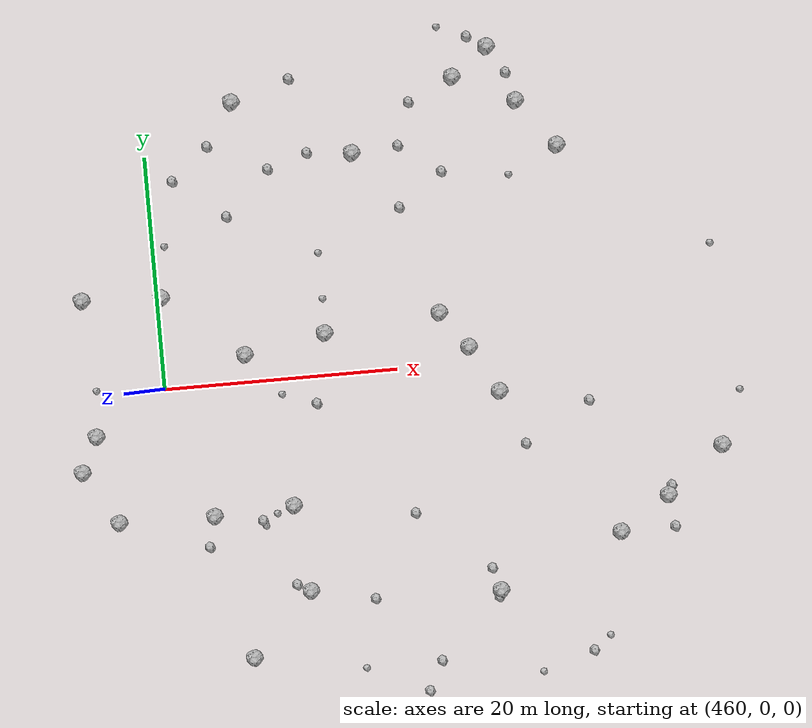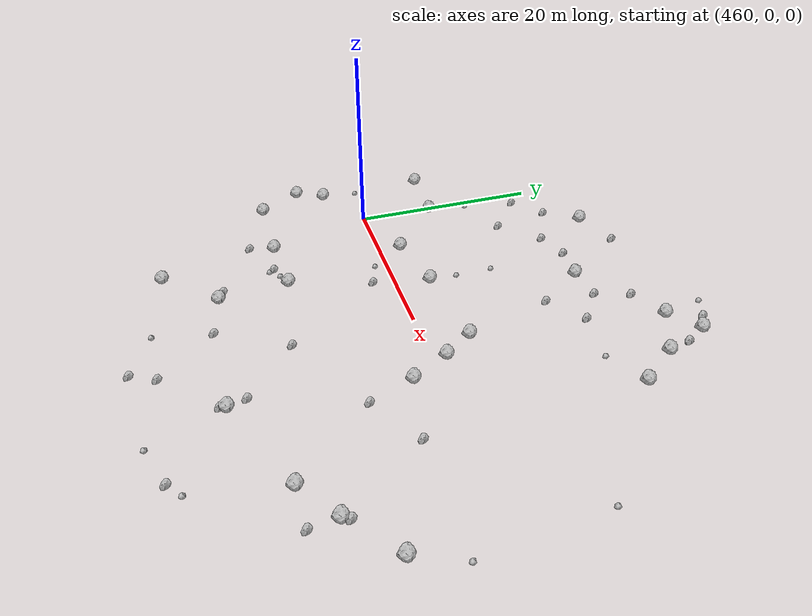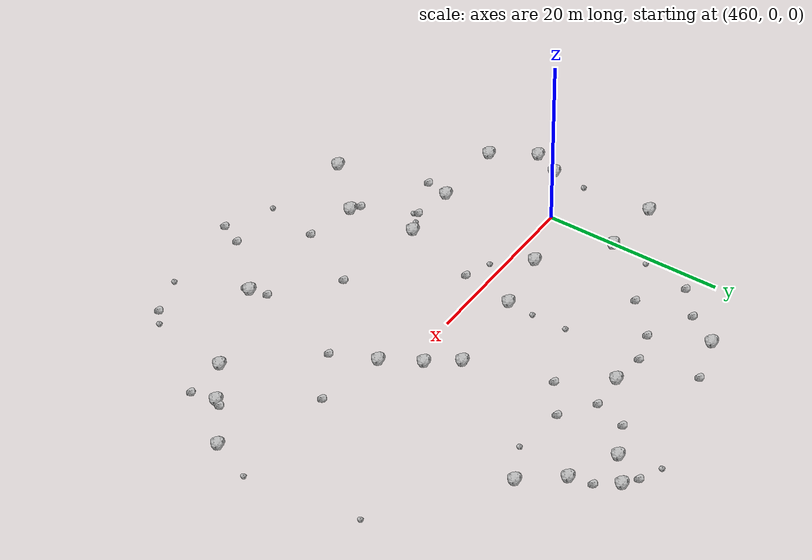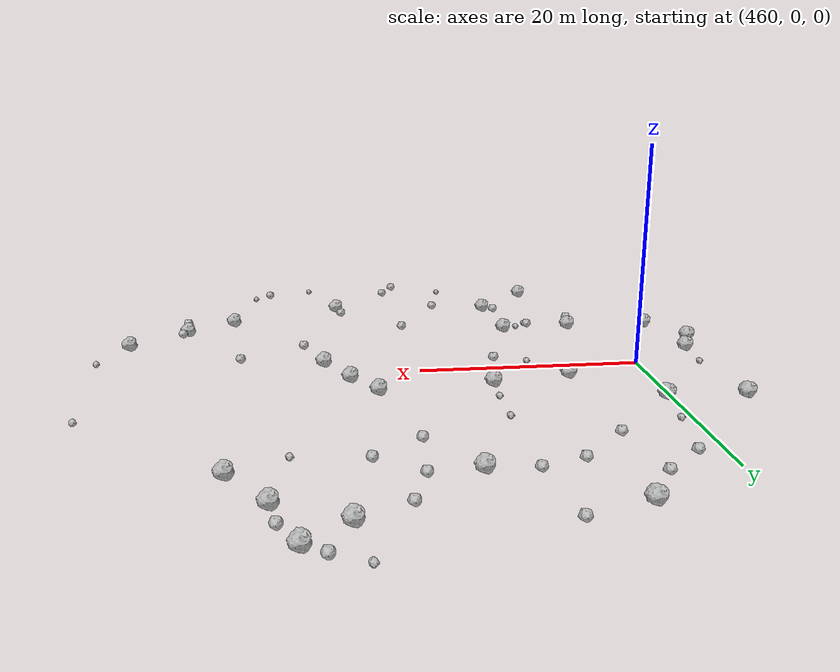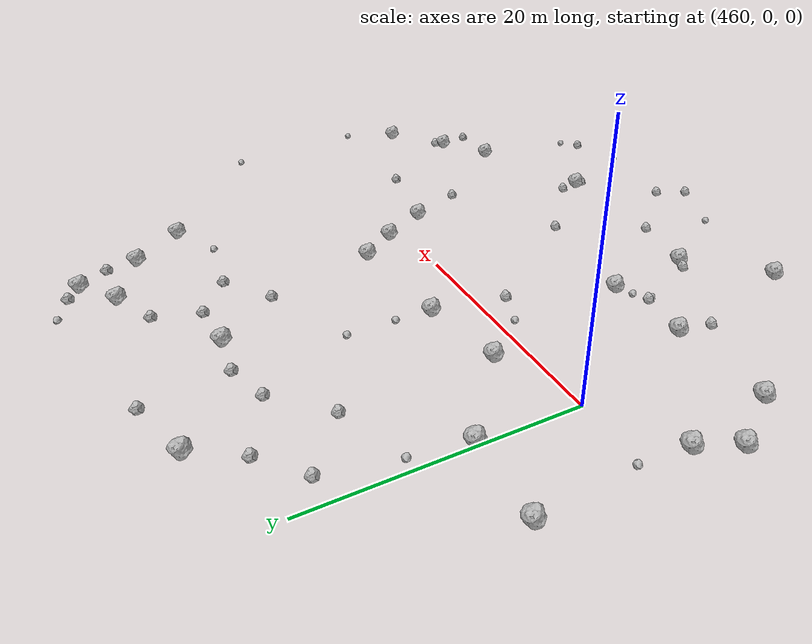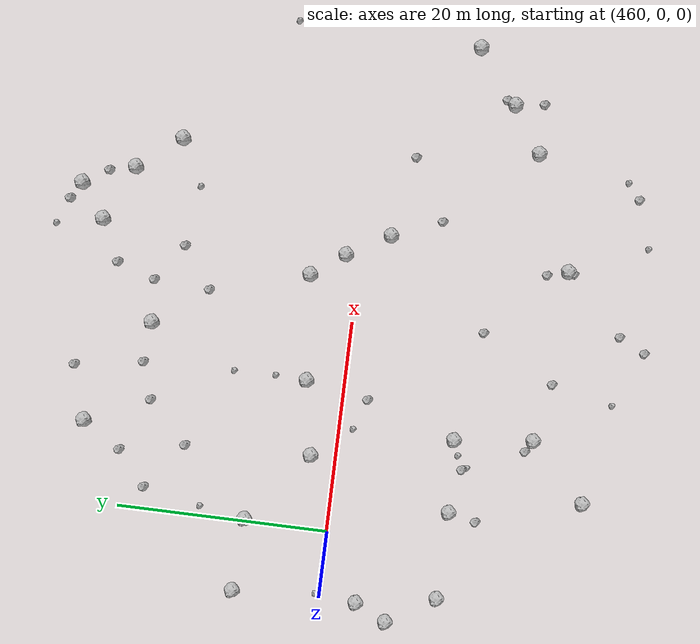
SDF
<sdf version="1.6">
 <world name="default">
  <include><uri>model://sun</uri></include>
  <model name="rock1_12_3">
   <include><uri>model://rock1</uri><pose>453.62732201834905 8.167402110558314 0.5 0 0 0</pose></include>
  </model>
  <model name="rock1_12_4">
   <include><uri>model://rock1</uri><pose>507.24907254676066 -8.830599379233679 0.5 0 0 0</pose></include>
  </model>
  <model name="rock1_12_5">
   <include><uri>model://rock1</uri><pose>492.12966080815687 22.099904223308847 0.5 0 0 0</pose></include>
  </model>
  <model name="rock1_12_6">
   <include><uri>model://rock1</uri><pose>484.0663799397314 4.5322346351543885 0.5 0 0 0</pose></include>
  </model>
  <model name="rock1_12_7">
   <include><uri>model://rock1</uri><pose>487.2791973322211 -19.603878825775517 0.5 0 0 0</pose></include>
  </model>
  <model name="rock1_12_8">
   <include><uri>model://rock1</uri><pose>497.9747750426092 -15.498870898004377 0.5 0 0 0</pose></include>
  </model>
  <model name="rock1_12_9">
   <include><uri>model://rock1</uri><pose>467.14372928853925 2.385903848620785 0.5 0 0 0</pose></include>
  </model>
  <model name="rock1_12_10">
   <include><uri>model://rock1</uri><pose>490.05262128190986 26.924990144526895 0.5 0 0 0</pose></include>
  </model>
  <model name="rock1_12_11">
   <include><uri>model://rock1</uri><pose>488.62266353699266 -2.5994267048281046 0.5 0 0 0</pose></include>
  </model>
  <model name="rock1_12_12">
   <include><uri>model://rock1</uri><pose>486.8956225140719 24.578485895903903 0.5 0 0 0</pose></include>
  </model>
  <model name="rock1_12_13">
   <include><uri>model://rock1</uri><pose>463.3751850631735 -11.19734767496924 0.5 0 0 0</pose></include>
  </model>
  <model name="rock1_12_14">
   <include><uri>model://rock1</uri><pose>471.04549694414 -18.272965321819612 0.5 0 0 0</pose></include>
  </model>
  <model name="rock1_12_15">
   <include><uri>model://rock1</uri><pose>474.12180526980904 3.6481664204965583 0.5 0 0 0</pose></include>
  </model>
  <model name="rock1_12_16">
   <include><uri>model://rock1</uri><pose>502.2804903462912 -12.710251829642203 0.5 0 0 0</pose></include>
  </model>
  <model name="rock1_12_17">
   <include><uri>model://rock1</uri><pose>470.2119668690598 -10.851663050075182 0.5 0 0 0</pose></include>
  </model>
  <model name="rock1_12_18">
   <include><uri>model://rock1</uri><pose>467.85178797973293 24.041752700831125 0.5 0 0 0</pose></include>
  </model>
  <model name="rock1_12_19">
   <include><uri>model://rock1</uri><pose>455.17734638729866 -11.065221097986054 0.5 0 0 0</pose></include>
  </model>
  <model name="rock1_12_20">
   <include><uri>model://rock1</uri><pose>452.4145389220948 -6.51747456691804 0.5 0 0 0</pose></include>
  </model>
  <model name="rock1_12_21">
   <include><uri>model://rock1</uri><pose>486.34296291768936 1.4040923113189798 0.5 0 0 0</pose></include>
  </model>
  <model name="rock1_12_22">
   <include><uri>model://rock1</uri><pose>453.87045404928256 -3.539146955578701 0.5 0 0 0</pose></include>
  </model>
  <model name="rock1_12_23">
   <include><uri>model://rock1</uri><pose>477.7828386774391 18.818610942256 0.5 0 0 0</pose></include>
  </model>
  <model name="rock1_12_24">
   <include><uri>model://rock1</uri><pose>465.7187233317288 -23.579146443825813 0.5 0 0 0</pose></include>
  </model>
  <model name="rock1_12_25">
   <include><uri>model://rock1</uri><pose>495.33123851544667 17.99990497761528 0.5 0 0 0</pose></include>
  </model>
  <model name="rock1_12_26">
   <include><uri>model://rock1</uri><pose>460.42710118767957 7.848742578199172 0.5 0 0 0</pose></include>
  </model>
  <model name="rock2_12_0">
   <include><uri>model://rock2</uri><pose>481.4297748897073 13.838919438216557 0.3 0 0 0</pose></include>
  </model>
  <model name="rock2_12_1">
   <include><uri>model://rock2</uri><pose>470.43888713118014 18.08000811933639 0.3 0 0 0</pose></include>
  </model>
  <model name="rock2_12_2">
   <include><uri>model://rock2</uri><pose>480.45695757437534 -27.73549226208444 0.3 0 0 0</pose></include>
  </model>
  <model name="rock2_12_3">
   <include><uri>model://rock2</uri><pose>480.55110258136887 -12.428497457613819 0.3 0 0 0</pose></include>
  </model>
  <model name="rock2_12_4">
   <include><uri>model://rock2</uri><pose>472.8936100086111 25.643149640173604 0.3 0 0 0</pose></include>
  </model>
  <model name="rock2_12_5">
   <include><uri>model://rock2</uri><pose>466.56852844879757 14.320272184825619 0.3 0 0 0</pose></include>
  </model>
  <model name="rock2_12_6">
   <include><uri>model://rock2</uri><pose>488.42354932648203 27.95921455098165 0.3 0 0 0</pose></include>
  </model>
  <model name="rock2_12_7">
   <include><uri>model://rock2</uri><pose>487.093691806094 -20.199110756721627 0.3 0 0 0</pose></include>
  </model>
  <model name="rock2_12_8">
   <include><uri>model://rock2</uri><pose>485.2897645250528 16.60575698029706 0.3 0 0 0</pose></include>
  </model>
  <model name="rock2_12_9">
   <include><uri>model://rock2</uri><pose>476.49697407690286 -19.445655188082938 0.3 0 0 0</pose></include>
  </model>
  <model name="rock2_12_10">
   <include><uri>model://rock2</uri><pose>494.8149103646492 -25.489064813633984 0.3 0 0 0</pose></include>
  </model>
  <model name="rock2_12_11">
   <include><uri>model://rock2</uri><pose>486.7031321696786 -17.694862825068775 0.3 0 0 0</pose></include>
  </model>
  <model name="rock2_12_12">
   <include><uri>model://rock2</uri><pose>462.1802400769648 17.739802033143768 0.3 0 0 0</pose></include>
  </model>
  <model name="rock2_12_13">
   <include><uri>model://rock2</uri><pose>465.4094213612899 20.464630154536977 0.3 0 0 0</pose></include>
  </model>
  <model name="rock2_12_14">
   <include><uri>model://rock2</uri><pose>467.4550392227716 -11.938732536052694 0.3 0 0 0</pose></include>
  </model>
  <model name="rock2_12_15">
   <include><uri>model://rock2</uri><pose>482.98592206612335 22.77162571307108 0.3 0 0 0</pose></include>
  </model>
  <model name="rock2_12_16">
   <include><uri>model://rock2</uri><pose>496.22951946469266 -4.05653015882103 0.3 0 0 0</pose></include>
  </model>
  <model name="rock2_12_17">
   <include><uri>model://rock2</uri><pose>469.88984693515044 -17.67371190047141 0.3 0 0 0</pose></include>
  </model>
  <model name="rock2_12_18">
   <include><uri>model://rock2</uri><pose>491.50034368474223 24.597034939279098 0.3 0 0 0</pose></include>
  </model>
  <model name="rock2_12_19">
   <include><uri>model://rock2</uri><pose>481.75541313447746 19.12966384494414 0.3 0 0 0</pose></include>
  </model>
  <model name="rock2_12_20">
   <include><uri>model://rock2</uri><pose>502.6608793106861 -11.948432660944675 0.3 0 0 0</pose></include>
  </model>
  <model name="rock2_12_21">
   <include><uri>model://rock2</uri><pose>472.91839515406406 -2.311659692969556 0.3 0 0 0</pose></include>
  </model>
  <model name="rock2_12_22">
   <include><uri>model://rock2</uri><pose>473.9082232592692 19.19000754161644 0.3 0 0 0</pose></include>
  </model>
  <model name="rock2_12_23">
   <include><uri>model://rock2</uri><pose>462.70286015670587 -13.821348686498165 0.3 0 0 0</pose></include>
  </model>
  <model name="rock2_12_24">
   <include><uri>model://rock2</uri><pose>490.50502207674054 -7.296854954707641 0.3 0 0 0</pose></include>
  </model>
  <model name="rock2_12_25">
   <include><uri>model://rock2</uri><pose>481.7252553676283 -25.237557886071478 0.3 0 0 0</pose></include>
  </model>
  <model name="rock2_12_26">
   <include><uri>model://rock2</uri><pose>502.6685477421886 -15.479717727288262 0.3 0 0 0</pose></include>
  </model>
  <model name="rock3_12_0">
   <include><uri>model://rock3</uri><pose>467.64004461569743 -12.446783452870228 0.2 0 0 0</pose></include>
  </model>
  <model name="rock3_12_1">
   <include><uri>model://rock3</uri><pose>475.17768659500706 -25.359890283131833 0.2 0 0 0</pose></include>
  </model>
  <model name="rock3_12_2">
   <include><uri>model://rock3</uri><pose>507.70176942009357 8.476664225933334 0.2 0 0 0</pose></include>
  </model>
  <model name="rock3_12_3">
   <include><uri>model://rock3</uri><pose>490.9964321266384 15.827493848799506 0.2 0 0 0</pose></include>
  </model>
  <model name="rock3_12_4">
   <include><uri>model://rock3</uri><pose>496.29509086244536 -24.34332873163172 0.2 0 0 0</pose></include>
  </model>
  <model name="rock3_12_5">
   <include><uri>model://rock3</uri><pose>474.1518360336742 6.583597390207437 0.2 0 0 0</pose></include>
  </model>
  <model name="rock3_12_6">
   <include><uri>model://rock3</uri><pose>509.1755077086295 -4.274863014682232 0.2 0 0 0</pose></include>
  </model>
  <model name="rock3_12_7">
   <include><uri>model://rock3</uri><pose>454.114715843981 0.34945753790666245 0.2 0 0 0</pose></include>
  </model>
  <model name="rock3_12_8">
   <include><uri>model://rock3</uri><pose>490.3052150650755 -26.975815729978958 0.2 0 0 0</pose></include>
  </model>
  <model name="rock3_12_9">
   <include><uri>model://rock3</uri><pose>474.1076561885153 10.536684287533596 0.2 0 0 0</pose></include>
  </model>
  <model name="rock3_12_10">
   <include><uri>model://rock3</uri><pose>485.9068769342521 28.982374868235 0.2 0 0 0</pose></include>
  </model>
  <model name="rock3_12_11">
   <include><uri>model://rock3</uri><pose>460.99853310239 12.204092607061064 0.2 0 0 0</pose></include>
  </model>
  <model name="rock3_12_12">
   <include><uri>model://rock3</uri><pose>469.9841735523826 -1.3067177586822787 0.2 0 0 0</pose></include>
  </model>
  <model name="rock3_12_13">
   <include><uri>model://rock3</uri><pose>468.7001232287196 -11.463264914258833 0.2 0 0 0</pose></include>
  </model>
 </world>
</sdf>
